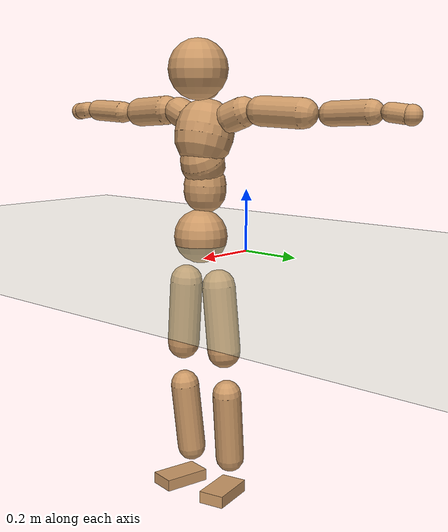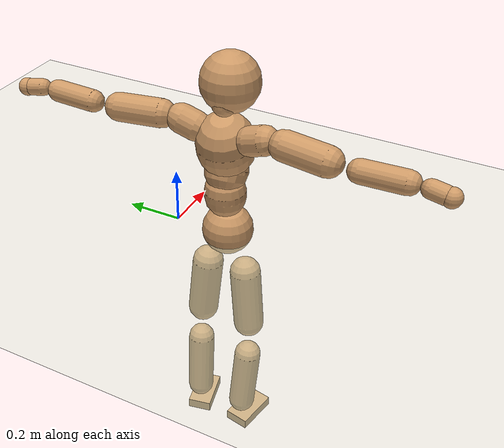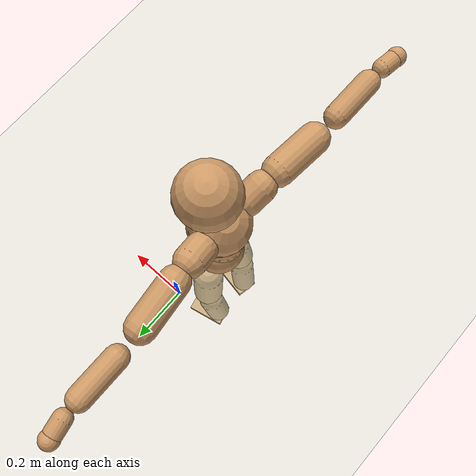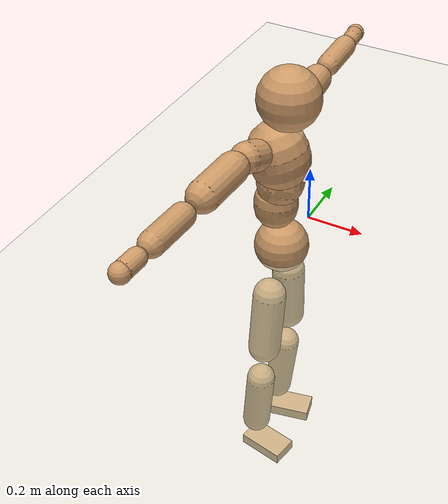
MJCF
<mujoco model="humanoid">
  <compiler coordinate="local" angle="radian"/>
  <default>
    <joint damping="0.0" armature="0.01" stiffness="0.0" limited="true"/>
    <geom conaffinity="1" condim="3" contype="7" margin="0.001" rgba="0.8 0.6 .4 1"/>
  </default>
  <asset>
    <texture type="skybox" builtin="gradient" rgb1=".4 .5 .6" rgb2="0 0 0" width="100" height="100"/>
    <texture builtin="flat" height="1278" mark="cross" markrgb="1 1 1" name="texgeom" random="0.01" rgb1="0.8 0.6 0.4" rgb2="0.8 0.6 0.4" type="cube" width="127"/>
    <texture builtin="checker" height="100" name="texplane" rgb1="0 0 0" rgb2="0.8 0.8 0.8" type="2d" width="100"/>
    <material name="MatPlane" reflectance="0.5" shininess="1" specular="1" texrepeat="60 60" texture="texplane"/>
    <material name="geom" texture="texgeom" texuniform="true"/>
  </asset>
  <worldbody>
    <light cutoff="100" diffuse="1 1 1" dir="-0 0 -1.3" directional="true" exponent="1" pos="0 0 1.3" specular=".1 .1 .1"/>
    <geom conaffinity="1" condim="3" name="floor" pos="0 0 0" rgba="0.8 0.9 0.8 1" size="100 100 .2" type="plane" material="MatPlane"/>
    <body name="Pelvis" pos="-0.0009 -0.2037 0.0277">
      <freejoint name="Pelvis"/>
      <geom type="sphere" contype="1" conaffinity="1" density="500" size="0.0911" pos="0.0000 0.0000 0.0000" name="Pelvis"/>
      <body name="L_Hip" pos="-0.0065 0.0686 -0.0888">
        <joint name="L_Hip_x" type="hinge" pos="0 0 0" axis="1 0 0" stiffness="800" damping="80" armature="0.02" range="-180.0000 180.0000"/>
        <joint name="L_Hip_y" type="hinge" pos="0 0 0" axis="0 1 0" stiffness="800" damping="80" armature="0.02" range="-180.0000 180.0000"/>
        <joint name="L_Hip_z" type="hinge" pos="0 0 0" axis="0 0 1" stiffness="800" damping="80" armature="0.02" range="-180.0000 180.0000"/>
        <geom type="capsule" contype="1" conaffinity="1" density="500" fromto="-0.0018 0.0065 -0.0755 -0.0073 0.0259 -0.3019" size="0.0566" name="L_Hip"/>
        <body name="L_Knee" pos="-0.0091 0.0324 -0.3774">
          <joint name="L_Knee_x" type="hinge" pos="0 0 0" axis="1 0 0" stiffness="800" damping="80" armature="0.02" range="-180.0000 180.0000"/>
          <joint name="L_Knee_y" type="hinge" pos="0 0 0" axis="0 1 0" stiffness="800" damping="80" armature="0.02" range="-180.0000 180.0000"/>
          <joint name="L_Knee_z" type="hinge" pos="0 0 0" axis="0 0 1" stiffness="800" damping="80" armature="0.02" range="-180.0000 180.0000"/>
          <geom type="capsule" contype="1" conaffinity="1" density="500" fromto="-0.0083 -0.0023 -0.0805 -0.0333 -0.0093 -0.3219" size="0.0498" name="L_Knee"/>
          <body name="L_Ankle" pos="-0.0416 -0.0116 -0.4024">
            <joint name="L_Ankle_x" type="hinge" pos="0 0 0" axis="1 0 0" stiffness="800" damping="80" armature="0.02" range="-180.0000 180.0000"/>
            <joint name="L_Ankle_y" type="hinge" pos="0 0 0" axis="0 1 0" stiffness="800" damping="80" armature="0.02" range="-180.0000 180.0000"/>
            <joint name="L_Ankle_z" type="hinge" pos="0 0 0" axis="0 0 1" stiffness="800" damping="80" armature="0.02" range="-180.0000 180.0000"/>
            <geom type="box" contype="1" conaffinity="1" density="500" pos="0.0573 0.0121 -0.0288" size="0.0804 0.045 0.0209" quat="0.9946 0.0000 0.0000 0.1041" name="L_Ankle"/>
            <body name="L_Toe" pos="0.1145 0.0242 -0.0576">
              <joint name="L_Toe_x" type="hinge" pos="0 0 0" axis="1 0 0" stiffness="500" damping="50" armature="0.02" range="-180.0000 180.0000"/>
              <joint name="L_Toe_y" type="hinge" pos="0 0 0" axis="0 1 0" stiffness="500" damping="50" armature="0.02" range="-180.0000 180.0000"/>
              <joint name="L_Toe_z" type="hinge" pos="0 0 0" axis="0 0 1" stiffness="500" damping="50" armature="0.02" range="-180.0000 180.0000"/>
              <geom type="box" contype="1" conaffinity="1" density="500" pos="0.0000 0.0000 0.0284" size="0.0009 0.0023 0.001" quat="0.9939 0.0000 0.0000 0.1105" name="L_Toe"/>
            </body>
          </body>
        </body>
      </body>
      <body name="R_Hip" pos="-0.0024 -0.0666 -0.0887">
        <joint name="R_Hip_x" type="hinge" pos="0 0 0" axis="1 0 0" stiffness="800" damping="80" armature="0.02" range="-180.0000 180.0000"/>
        <joint name="R_Hip_y" type="hinge" pos="0 0 0" axis="0 1 0" stiffness="800" damping="80" armature="0.02" range="-180.0000 180.0000"/>
        <joint name="R_Hip_z" type="hinge" pos="0 0 0" axis="0 0 1" stiffness="800" damping="80" armature="0.02" range="-180.0000 180.0000"/>
        <geom type="capsule" contype="1" conaffinity="1" density="500" fromto="-0.0021 -0.0078 -0.0767 -0.0086 -0.0312 -0.3068" size="0.0559" name="R_Hip"/>
        <body name="R_Knee" pos="-0.0107 -0.039 -0.3836">
          <joint name="R_Knee_x" type="hinge" pos="0 0 0" axis="1 0 0" stiffness="800" damping="80" armature="0.02" range="-180.0000 180.0000"/>
          <joint name="R_Knee_y" type="hinge" pos="0 0 0" axis="0 1 0" stiffness="800" damping="80" armature="0.02" range="-180.0000 180.0000"/>
          <joint name="R_Knee_z" type="hinge" pos="0 0 0" axis="0 0 1" stiffness="800" damping="80" armature="0.02" range="-180.0000 180.0000"/>
          <geom type="capsule" contype="1" conaffinity="1" density="500" fromto="-0.0079 0.0030 -0.0808 -0.0315 0.0121 -0.3230" size="0.0502" name="R_Knee"/>
          <body name="R_Ankle" pos="-0.0394 0.0151 -0.4038">
            <joint name="R_Ankle_x" type="hinge" pos="0 0 0" axis="1 0 0" stiffness="800" damping="80" armature="0.02" range="-180.0000 180.0000"/>
            <joint name="R_Ankle_y" type="hinge" pos="0 0 0" axis="0 1 0" stiffness="800" damping="80" armature="0.02" range="-180.0000 180.0000"/>
            <joint name="R_Ankle_z" type="hinge" pos="0 0 0" axis="0 0 1" stiffness="800" damping="80" armature="0.02" range="-180.0000 180.0000"/>
            <geom type="box" contype="1" conaffinity="1" density="500" pos="0.0592 -0.0109 -0.0241" size="0.0828 0.0464 0.0203" quat="0.9958 0.0000 0.0000 -0.0912" name="R_Ankle"/>
            <body name="R_Toe" pos="0.1184 -0.0219 -0.0482">
              <joint name="R_Toe_x" type="hinge" pos="0 0 0" axis="1 0 0" stiffness="500" damping="50" armature="0.02" range="-180.0000 180.0000"/>
              <joint name="R_Toe_y" type="hinge" pos="0 0 0" axis="0 1 0" stiffness="500" damping="50" armature="0.02" range="-180.0000 180.0000"/>
              <joint name="R_Toe_z" type="hinge" pos="0 0 0" axis="0 0 1" stiffness="500" damping="50" armature="0.02" range="-180.0000 180.0000"/>
              <geom type="box" contype="1" conaffinity="1" density="500" pos="0.0000 0.0000 0.0263" size="0.0009 0.0023 0.0011" quat="0.9967 0.0000 0.0000 -0.0817" name="R_Toe"/>
            </body>
          </body>
        </body>
      </body>
      <body name="Torso" pos="-0.0225 -0.0024 0.1017">
        <joint name="Torso_x" type="hinge" pos="0 0 0" axis="1 0 0" stiffness="1000" damping="100" armature="0.02" range="-180.0000 180.0000"/>
        <joint name="Torso_y" type="hinge" pos="0 0 0" axis="0 1 0" stiffness="1000" damping="100" armature="0.02" range="-180.0000 180.0000"/>
        <joint name="Torso_z" type="hinge" pos="0 0 0" axis="0 0 1" stiffness="1000" damping="100" armature="0.02" range="-180.0000 180.0000"/>
        <geom type="capsule" contype="1" conaffinity="1" density="500" fromto="0.0002 0.0021 0.0714 0.0002 0.0014 0.0476" size="0.0721" name="Torso"/>
        <body name="Spine" pos="0.0004 0.0035 0.1191">
          <joint name="Spine_x" type="hinge" pos="0 0 0" axis="1 0 0" stiffness="1000" damping="100" armature="0.02" range="-180.0000 180.0000"/>
          <joint name="Spine_y" type="hinge" pos="0 0 0" axis="0 1 0" stiffness="1000" damping="100" armature="0.02" range="-180.0000 180.0000"/>
          <joint name="Spine_z" type="hinge" pos="0 0 0" axis="0 0 1" stiffness="1000" damping="100" armature="0.02" range="-180.0000 180.0000"/>
          <geom type="capsule" contype="1" conaffinity="1" density="500" fromto="0.0159 0.0012 0.0297 0.0106 0.0008 0.0198" size="0.0751" name="Spine"/>
          <body name="Chest" pos="0.0265 0.0021 0.0495">
            <joint name="Chest_x" type="hinge" pos="0 0 0" axis="1 0 0" stiffness="1000" damping="100" armature="0.02" range="-180.0000 180.0000"/>
            <joint name="Chest_y" type="hinge" pos="0 0 0" axis="0 1 0" stiffness="1000" damping="100" armature="0.02" range="-180.0000 180.0000"/>
            <joint name="Chest_z" type="hinge" pos="0 0 0" axis="0 0 1" stiffness="1000" damping="100" armature="0.02" range="-180.0000 180.0000"/>
            <geom type="capsule" contype="1" conaffinity="1" density="500" fromto="-0.0260 -0.0011 0.0897 -0.0174 -0.0007 0.0598" size="0.0989" name="Chest"/>
            <body name="Neck" pos="-0.0472 -0.0029 0.2124">
              <joint name="Neck_x" type="hinge" pos="0 0 0" axis="1 0 0" stiffness="500" damping="50" armature="0.02" range="-180.0000 180.0000"/>
              <joint name="Neck_y" type="hinge" pos="0 0 0" axis="0 1 0" stiffness="500" damping="50" armature="0.02" range="-180.0000 180.0000"/>
              <joint name="Neck_z" type="hinge" pos="0 0 0" axis="0 0 1" stiffness="500" damping="50" armature="0.02" range="-180.0000 180.0000"/>
              <geom type="capsule" contype="1" conaffinity="1" density="500" fromto="0.0112 0.0007 0.0136 0.0449 0.0028 0.0542" size="0.0423" name="Neck"/>
              <body name="Head" pos="0.0561 0.0035 0.0678">
                <joint name="Head_x" type="hinge" pos="0 0 0" axis="1 0 0" stiffness="500" damping="50" armature="0.02" range="-180.0000 180.0000"/>
                <joint name="Head_y" type="hinge" pos="0 0 0" axis="0 1 0" stiffness="500" damping="50" armature="0.02" range="-180.0000 180.0000"/>
                <joint name="Head_z" type="hinge" pos="0 0 0" axis="0 0 1" stiffness="500" damping="50" armature="0.02" range="-180.0000 180.0000"/>
                <geom type="sphere" contype="1" conaffinity="1" density="500" size="0.0998" pos="0.0000 0.0000 0.0000" name="Head"/>
              </body>
            </body>
            <body name="L_Thorax" pos="-0.0394 0.0785 0.1191">
              <joint name="L_Thorax_x" type="hinge" pos="0 0 0" axis="1 0 0" stiffness="500" damping="50" armature="0.02" range="-180.0000 180.0000"/>
              <joint name="L_Thorax_y" type="hinge" pos="0 0 0" axis="0 1 0" stiffness="500" damping="50" armature="0.02" range="-180.0000 180.0000"/>
              <joint name="L_Thorax_z" type="hinge" pos="0 0 0" axis="0 0 1" stiffness="500" damping="50" armature="0.02" range="-180.0000 180.0000"/>
              <geom type="capsule" contype="1" conaffinity="1" density="500" fromto="-0.0018 0.0172 0.0061 -0.0073 0.0689 0.0246" size="0.0502" name="L_Thorax"/>
              <body name="L_Shoulder" pos="-0.0091 0.0861 0.0307">
                <joint name="L_Shoulder_x" type="hinge" pos="0 0 0" axis="1 0 0" stiffness="500" damping="50" armature="0.02" range="-720.0000 720.0000"/>
                <joint name="L_Shoulder_y" type="hinge" pos="0 0 0" axis="0 1 0" stiffness="500" damping="50" armature="0.02" range="-720.0000 720.0000"/>
                <joint name="L_Shoulder_z" type="hinge" pos="0 0 0" axis="0 0 1" stiffness="500" damping="50" armature="0.02" range="-720.0000 720.0000"/>
                <geom type="capsule" contype="1" conaffinity="1" density="500" fromto="-0.0053 0.0517 -0.0022 -0.0214 0.2069 -0.0087" size="0.0483" name="L_Shoulder"/>
                <body name="L_Elbow" pos="-0.0267 0.2586 -0.0108">
                  <joint name="L_Elbow_x" type="hinge" pos="0 0 0" axis="1 0 0" stiffness="500" damping="50" armature="0.02" range="-720.0000 720.0000"/>
                  <joint name="L_Elbow_y" type="hinge" pos="0 0 0" axis="0 1 0" stiffness="500" damping="50" armature="0.02" range="-720.0000 720.0000"/>
                  <joint name="L_Elbow_z" type="hinge" pos="0 0 0" axis="0 0 1" stiffness="500" damping="50" armature="0.02" range="-720.0000 720.0000"/>
                  <geom type="capsule" contype="1" conaffinity="1" density="500" fromto="-0.0004 0.0474 0.0020 -0.0014 0.1894 0.0079" size="0.0378" name="L_Elbow"/>
                  <body name="L_Wrist" pos="-0.0018 0.2368 0.0099">
                    <joint name="L_Wrist_x" type="hinge" pos="0 0 0" axis="1 0 0" stiffness="300" damping="30" armature="0.02" range="-180.0000 180.0000"/>
                    <joint name="L_Wrist_y" type="hinge" pos="0 0 0" axis="0 1 0" stiffness="300" damping="30" armature="0.02" range="-180.0000 180.0000"/>
                    <joint name="L_Wrist_z" type="hinge" pos="0 0 0" axis="0 0 1" stiffness="300" damping="30" armature="0.02" range="-180.0000 180.0000"/>
                    <geom type="capsule" contype="1" conaffinity="1" density="500" fromto="-0.0026 0.0154 -0.0018 -0.0102 0.0616 -0.0074" size="0.0291" name="L_Wrist"/>
                    <body name="L_Hand" pos="-0.0128 0.077 -0.0092">
                      <joint name="L_Hand_x" type="hinge" pos="0 0 0" axis="1 0 0" stiffness="300" damping="30" armature="0.02" range="-180.0000 180.0000"/>
                      <joint name="L_Hand_y" type="hinge" pos="0 0 0" axis="0 1 0" stiffness="300" damping="30" armature="0.02" range="-180.0000 180.0000"/>
                      <joint name="L_Hand_z" type="hinge" pos="0 0 0" axis="0 0 1" stiffness="300" damping="30" armature="0.02" range="-180.0000 180.0000"/>
                      <geom type="sphere" contype="1" conaffinity="1" density="500" size="0.0310" pos="0.0000 0.0000 0.0000" name="L_Hand"/>
                    </body>
                  </body>
                </body>
              </body>
            </body>
            <body name="R_Thorax" pos="-0.0436 -0.0809 0.117">
              <joint name="R_Thorax_x" type="hinge" pos="0 0 0" axis="1 0 0" stiffness="500" damping="50" armature="0.02" range="-180.0000 180.0000"/>
              <joint name="R_Thorax_y" type="hinge" pos="0 0 0" axis="0 1 0" stiffness="500" damping="50" armature="0.02" range="-180.0000 180.0000"/>
              <joint name="R_Thorax_z" type="hinge" pos="0 0 0" axis="0 0 1" stiffness="500" damping="50" armature="0.02" range="-180.0000 180.0000"/>
              <geom type="capsule" contype="1" conaffinity="1" density="500" fromto="-0.0023 -0.0177 0.0066 -0.0093 -0.0706 0.0264" size="0.0493" name="R_Thorax"/>
              <body name="R_Shoulder" pos="-0.0116 -0.0883 0.033">
                <joint name="R_Shoulder_x" type="hinge" pos="0 0 0" axis="1 0 0" stiffness="500" damping="50" armature="0.02" range="-720.0000 720.0000"/>
                <joint name="R_Shoulder_y" type="hinge" pos="0 0 0" axis="0 1 0" stiffness="500" damping="50" armature="0.02" range="-720.0000 720.0000"/>
                <joint name="R_Shoulder_z" type="hinge" pos="0 0 0" axis="0 0 1" stiffness="500" damping="50" armature="0.02" range="-720.0000 720.0000"/>
                <geom type="capsule" contype="1" conaffinity="1" density="500" fromto="-0.0041 -0.0499 -0.0028 -0.0164 -0.1995 -0.0111" size="0.0504" name="R_Shoulder"/>
                <body name="R_Elbow" pos="-0.0204 -0.2494 -0.0138">
                  <joint name="R_Elbow_x" type="hinge" pos="0 0 0" axis="1 0 0" stiffness="500" damping="50" armature="0.02" range="-720.0000 720.0000"/>
                  <joint name="R_Elbow_y" type="hinge" pos="0 0 0" axis="0 1 0" stiffness="500" damping="50" armature="0.02" range="-720.0000 720.0000"/>
                  <joint name="R_Elbow_z" type="hinge" pos="0 0 0" axis="0 0 1" stiffness="500" damping="50" armature="0.02" range="-720.0000 720.0000"/>
                  <geom type="capsule" contype="1" conaffinity="1" density="500" fromto="-0.0010 -0.0492 0.0020 -0.0039 -0.1969 0.0082" size="0.0385" name="R_Elbow"/>
                  <body name="R_Wrist" pos="-0.0049 -0.2461 0.0102">
                    <joint name="R_Wrist_x" type="hinge" pos="0 0 0" axis="1 0 0" stiffness="300" damping="30" armature="0.02" range="-180.0000 180.0000"/>
                    <joint name="R_Wrist_y" type="hinge" pos="0 0 0" axis="0 1 0" stiffness="300" damping="30" armature="0.02" range="-180.0000 180.0000"/>
                    <joint name="R_Wrist_z" type="hinge" pos="0 0 0" axis="0 0 1" stiffness="300" damping="30" armature="0.02" range="-180.0000 180.0000"/>
                    <geom type="capsule" contype="1" conaffinity="1" density="500" fromto="-0.0020 -0.0156 -0.0014 -0.0080 -0.0626 -0.0057" size="0.0301" name="R_Wrist"/>
                    <body name="R_Hand" pos="-0.01 -0.0782 -0.0071">
                      <joint name="R_Hand_x" type="hinge" pos="0 0 0" axis="1 0 0" stiffness="300" damping="30" armature="0.02" range="-180.0000 180.0000"/>
                      <joint name="R_Hand_y" type="hinge" pos="0 0 0" axis="0 1 0" stiffness="300" damping="30" armature="0.02" range="-180.0000 180.0000"/>
                      <joint name="R_Hand_z" type="hinge" pos="0 0 0" axis="0 0 1" stiffness="300" damping="30" armature="0.02" range="-180.0000 180.0000"/>
                      <geom type="sphere" contype="1" conaffinity="1" density="500" size="0.0315" pos="0.0000 0.0000 0.0000" name="R_Hand"/>
                    </body>
                  </body>
                </body>
              </body>
            </body>
          </body>
        </body>
      </body>
    </body>
  </worldbody>
  <actuator>
    <motor name="L_Hip_x" joint="L_Hip_x" gear="500"/>
    <motor name="L_Hip_y" joint="L_Hip_y" gear="500"/>
    <motor name="L_Hip_z" joint="L_Hip_z" gear="500"/>
    <motor name="L_Knee_x" joint="L_Knee_x" gear="500"/>
    <motor name="L_Knee_y" joint="L_Knee_y" gear="500"/>
    <motor name="L_Knee_z" joint="L_Knee_z" gear="500"/>
    <motor name="L_Ankle_x" joint="L_Ankle_x" gear="500"/>
    <motor name="L_Ankle_y" joint="L_Ankle_y" gear="500"/>
    <motor name="L_Ankle_z" joint="L_Ankle_z" gear="500"/>
    <motor name="L_Toe_x" joint="L_Toe_x" gear="500"/>
    <motor name="L_Toe_y" joint="L_Toe_y" gear="500"/>
    <motor name="L_Toe_z" joint="L_Toe_z" gear="500"/>
    <motor name="R_Hip_x" joint="R_Hip_x" gear="500"/>
    <motor name="R_Hip_y" joint="R_Hip_y" gear="500"/>
    <motor name="R_Hip_z" joint="R_Hip_z" gear="500"/>
    <motor name="R_Knee_x" joint="R_Knee_x" gear="500"/>
    <motor name="R_Knee_y" joint="R_Knee_y" gear="500"/>
    <motor name="R_Knee_z" joint="R_Knee_z" gear="500"/>
    <motor name="R_Ankle_x" joint="R_Ankle_x" gear="500"/>
    <motor name="R_Ankle_y" joint="R_Ankle_y" gear="500"/>
    <motor name="R_Ankle_z" joint="R_Ankle_z" gear="500"/>
    <motor name="R_Toe_x" joint="R_Toe_x" gear="500"/>
    <motor name="R_Toe_y" joint="R_Toe_y" gear="500"/>
    <motor name="R_Toe_z" joint="R_Toe_z" gear="500"/>
    <motor name="Torso_x" joint="Torso_x" gear="500"/>
    <motor name="Torso_y" joint="Torso_y" gear="500"/>
    <motor name="Torso_z" joint="Torso_z" gear="500"/>
    <motor name="Spine_x" joint="Spine_x" gear="500"/>
    <motor name="Spine_y" joint="Spine_y" gear="500"/>
    <motor name="Spine_z" joint="Spine_z" gear="500"/>
    <motor name="Chest_x" joint="Chest_x" gear="500"/>
    <motor name="Chest_y" joint="Chest_y" gear="500"/>
    <motor name="Chest_z" joint="Chest_z" gear="500"/>
    <motor name="Neck_x" joint="Neck_x" gear="500"/>
    <motor name="Neck_y" joint="Neck_y" gear="500"/>
    <motor name="Neck_z" joint="Neck_z" gear="500"/>
    <motor name="Head_x" joint="Head_x" gear="500"/>
    <motor name="Head_y" joint="Head_y" gear="500"/>
    <motor name="Head_z" joint="Head_z" gear="500"/>
    <motor name="L_Thorax_x" joint="L_Thorax_x" gear="500"/>
    <motor name="L_Thorax_y" joint="L_Thorax_y" gear="500"/>
    <motor name="L_Thorax_z" joint="L_Thorax_z" gear="500"/>
    <motor name="L_Shoulder_x" joint="L_Shoulder_x" gear="500"/>
    <motor name="L_Shoulder_y" joint="L_Shoulder_y" gear="500"/>
    <motor name="L_Shoulder_z" joint="L_Shoulder_z" gear="500"/>
    <motor name="L_Elbow_x" joint="L_Elbow_x" gear="500"/>
    <motor name="L_Elbow_y" joint="L_Elbow_y" gear="500"/>
    <motor name="L_Elbow_z" joint="L_Elbow_z" gear="500"/>
    <motor name="L_Wrist_x" joint="L_Wrist_x" gear="500"/>
    <motor name="L_Wrist_y" joint="L_Wrist_y" gear="500"/>
    <motor name="L_Wrist_z" joint="L_Wrist_z" gear="500"/>
    <motor name="L_Hand_x" joint="L_Hand_x" gear="500"/>
    <motor name="L_Hand_y" joint="L_Hand_y" gear="500"/>
    <motor name="L_Hand_z" joint="L_Hand_z" gear="500"/>
    <motor name="R_Thorax_x" joint="R_Thorax_x" gear="500"/>
    <motor name="R_Thorax_y" joint="R_Thorax_y" gear="500"/>
    <motor name="R_Thorax_z" joint="R_Thorax_z" gear="500"/>
    <motor name="R_Shoulder_x" joint="R_Shoulder_x" gear="500"/>
    <motor name="R_Shoulder_y" joint="R_Shoulder_y" gear="500"/>
    <motor name="R_Shoulder_z" joint="R_Shoulder_z" gear="500"/>
    <motor name="R_Elbow_x" joint="R_Elbow_x" gear="500"/>
    <motor name="R_Elbow_y" joint="R_Elbow_y" gear="500"/>
    <motor name="R_Elbow_z" joint="R_Elbow_z" gear="500"/>
    <motor name="R_Wrist_x" joint="R_Wrist_x" gear="500"/>
    <motor name="R_Wrist_y" joint="R_Wrist_y" gear="500"/>
    <motor name="R_Wrist_z" joint="R_Wrist_z" gear="500"/>
    <motor name="R_Hand_x" joint="R_Hand_x" gear="500"/>
    <motor name="R_Hand_y" joint="R_Hand_y" gear="500"/>
    <motor name="R_Hand_z" joint="R_Hand_z" gear="500"/>
  </actuator>
  <contact>
    <exclude body1="Torso" body2="Chest"/>
    <exclude body1="Head" body2="Chest"/>
    <exclude body1="R_Knee" body2="R_Toe"/>
    <exclude body1="R_Knee" body2="L_Ankle"/>
    <exclude body1="R_Knee" body2="L_Toe"/>
    <exclude body1="L_Knee" body2="L_Toe"/>
    <exclude body1="L_Knee" body2="R_Ankle"/>
    <exclude body1="L_Knee" body2="R_Toe"/>
    <exclude body1="L_Shoulder" body2="Chest"/>
    <exclude body1="R_Shoulder" body2="Chest"/>
  </contact>
  <sensor/>
  <size njmax="700" nconmax="700"/>
</mujoco>
